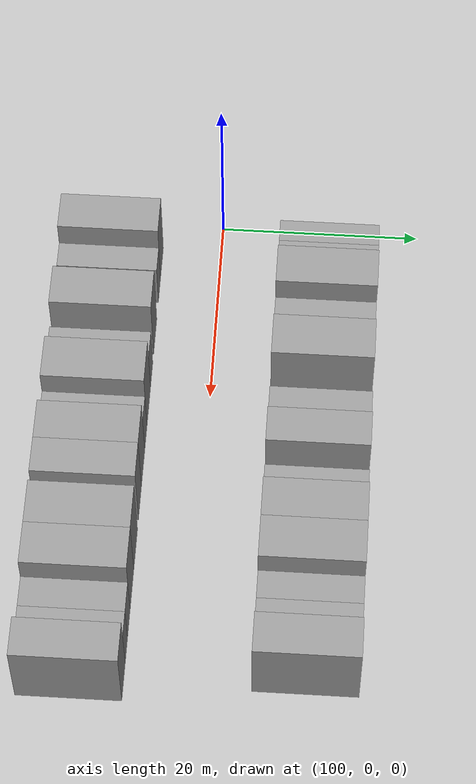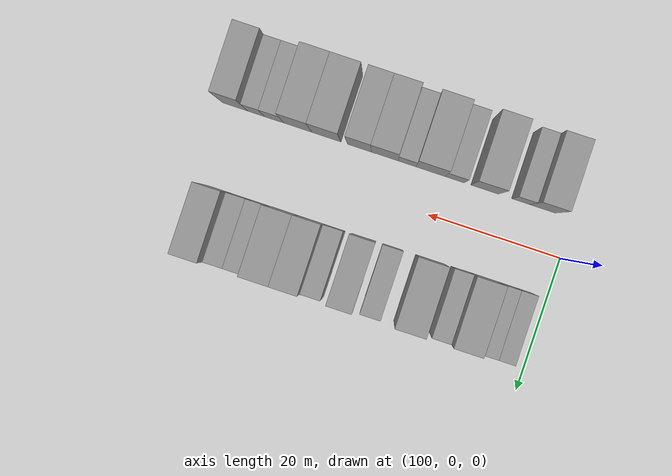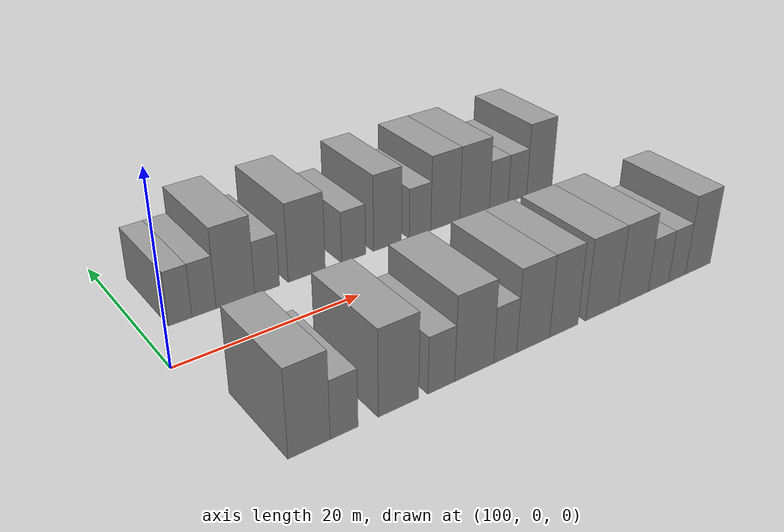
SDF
<sdf version="1.6">
 <world name="default">
  <model name="building_27">
   <static>1</static>
   <pose>103.7505 11.0000 0 0.000000 0.000000 1.570796</pose>
   <link name="link">
    <pose>0 0 3.00 0 0 0</pose>
    <collision name="collision"><geometry><box><size>10.0000 2.4264 6.0000</size></box></geometry></collision>
    <visual name="visual">
     <cast_shadows>0</cast_shadows>
     <geometry><box><size>10.0000 2.4264 6.0000</size></box></geometry>
     <material>
      <script>
       <uri>model://grey_wall/materials/scripts</uri>
       <uri>model://grey_wall/materials/textures</uri>
       <name>vrc/grey_wall</name>
      </script>
     </material>
    </visual>
   </link>
  </model>
  <model name="building_28">
   <static>1</static>
   <pose>106.2379 11.0000 0 0.000000 0.000000 1.570796</pose>
   <link name="link">
    <pose>0 0 3.00 0 0 0</pose>
    <collision name="collision"><geometry><box><size>10.0000 2.5483 6.0000</size></box></geometry></collision>
    <visual name="visual">
     <cast_shadows>0</cast_shadows>
     <geometry><box><size>10.0000 2.5483 6.0000</size></box></geometry>
     <material>
      <script>
       <uri>model://grey_wall/materials/scripts</uri>
       <uri>model://grey_wall/materials/textures</uri>
       <name>vrc/grey_wall</name>
      </script>
     </material>
    </visual>
   </link>
  </model>
  <model name="building_29">
   <static>1</static>
   <pose>109.6192 11.0000 0 0.000000 0.000000 1.570796</pose>
   <link name="link">
    <pose>0 0 4.50 0 0 0</pose>
    <collision name="collision"><geometry><box><size>10.0000 4.2144 9.0000</size></box></geometry></collision>
    <visual name="visual">
     <cast_shadows>0</cast_shadows>
     <geometry><box><size>10.0000 4.2144 9.0000</size></box></geometry>
     <material>
      <script>
       <uri>model://grey_wall/materials/scripts</uri>
       <uri>model://grey_wall/materials/textures</uri>
       <name>vrc/grey_wall</name>
      </script>
     </material>
    </visual>
   </link>
  </model>
  <model name="building_30">
   <static>1</static>
   <pose>113.1307 11.0000 0 0.000000 0.000000 1.570796</pose>
   <link name="link">
    <pose>0 0 3.00 0 0 0</pose>
    <collision name="collision"><geometry><box><size>10.0000 2.8086 6.0000</size></box></geometry></collision>
    <visual name="visual">
     <cast_shadows>0</cast_shadows>
     <geometry><box><size>10.0000 2.8086 6.0000</size></box></geometry>
     <material>
      <script>
       <uri>model://grey_wall/materials/scripts</uri>
       <uri>model://grey_wall/materials/textures</uri>
       <name>vrc/grey_wall</name>
      </script>
     </material>
    </visual>
   </link>
  </model>
  <model name="building_31">
   <static>1</static>
   <pose>117.7258 11.0000 0 0.000000 0.000000 1.570796</pose>
   <link name="link">
    <pose>0 0 4.50 0 0 0</pose>
    <collision name="collision"><geometry><box><size>10.0000 4.3816 9.0000</size></box></geometry></collision>
    <visual name="visual">
     <cast_shadows>0</cast_shadows>
     <geometry><box><size>10.0000 4.3816 9.0000</size></box></geometry>
     <material>
      <script>
       <uri>model://grey_wall/materials/scripts</uri>
       <uri>model://grey_wall/materials/textures</uri>
       <name>vrc/grey_wall</name>
      </script>
     </material>
    </visual>
   </link>
  </model>
  <model name="building_32">
   <static>1</static>
   <pose>123.4141 11.0000 0 0.000000 0.000000 1.570796</pose>
   <link name="link">
    <pose>0 0 3.00 0 0 0</pose>
    <collision name="collision"><geometry><box><size>10.0000 2.9950 6.0000</size></box></geometry></collision>
    <visual name="visual">
     <cast_shadows>0</cast_shadows>
     <geometry><box><size>10.0000 2.9950 6.0000</size></box></geometry>
     <material>
      <script>
       <uri>model://grey_wall/materials/scripts</uri>
       <uri>model://grey_wall/materials/textures</uri>
       <name>vrc/grey_wall</name>
      </script>
     </material>
    </visual>
   </link>
  </model>
  <model name="building_33">
   <static>1</static>
   <pose>127.7381 11.0000 0 0.000000 0.000000 1.570796</pose>
   <link name="link">
    <pose>0 0 4.50 0 0 0</pose>
    <collision name="collision"><geometry><box><size>10.0000 3.6529 9.0000</size></box></geometry></collision>
    <visual name="visual">
     <cast_shadows>0</cast_shadows>
     <geometry><box><size>10.0000 3.6529 9.0000</size></box></geometry>
     <material>
      <script>
       <uri>model://grey_wall/materials/scripts</uri>
       <uri>model://grey_wall/materials/textures</uri>
       <name>vrc/grey_wall</name>
      </script>
     </material>
    </visual>
   </link>
  </model>
  <model name="building_34">
   <static>1</static>
   <pose>132.0323 11.0000 0 0.000000 0.000000 1.570796</pose>
   <link name="link">
    <pose>0 0 3.00 0 0 0</pose>
    <collision name="collision"><geometry><box><size>10.0000 2.9356 6.0000</size></box></geometry></collision>
    <visual name="visual">
     <cast_shadows>0</cast_shadows>
     <geometry><box><size>10.0000 2.9356 6.0000</size></box></geometry>
     <material>
      <script>
       <uri>model://grey_wall/materials/scripts</uri>
       <uri>model://grey_wall/materials/textures</uri>
       <name>vrc/grey_wall</name>
      </script>
     </material>
    </visual>
   </link>
  </model>
  <model name="building_35">
   <static>1</static>
   <pose>135.5147 11.0000 0 0.000000 0.000000 1.570796</pose>
   <link name="link">
    <pose>0 0 4.50 0 0 0</pose>
    <collision name="collision"><geometry><box><size>10.0000 4.0293 9.0000</size></box></geometry></collision>
    <visual name="visual">
     <cast_shadows>0</cast_shadows>
     <geometry><box><size>10.0000 4.0293 9.0000</size></box></geometry>
     <material>
      <script>
       <uri>model://grey_wall/materials/scripts</uri>
       <uri>model://grey_wall/materials/textures</uri>
       <name>vrc/grey_wall</name>
      </script>
     </material>
    </visual>
   </link>
  </model>
  <model name="building_36">
   <static>1</static>
   <pose>139.6700 11.0000 0 0.000000 0.000000 1.570796</pose>
   <link name="link">
    <pose>0 0 4.50 0 0 0</pose>
    <collision name="collision"><geometry><box><size>10.0000 4.2813 9.0000</size></box></geometry></collision>
    <visual name="visual">
     <cast_shadows>0</cast_shadows>
     <geometry><box><size>10.0000 4.2813 9.0000</size></box></geometry>
     <material>
      <script>
       <uri>model://grey_wall/materials/scripts</uri>
       <uri>model://grey_wall/materials/textures</uri>
       <name>vrc/grey_wall</name>
      </script>
     </material>
    </visual>
   </link>
  </model>
  <model name="building_37">
   <static>1</static>
   <pose>143.2204 11.0000 0 0.000000 0.000000 1.570796</pose>
   <link name="link">
    <pose>0 0 3.00 0 0 0</pose>
    <collision name="collision"><geometry><box><size>10.0000 2.8195 6.0000</size></box></geometry></collision>
    <visual name="visual">
     <cast_shadows>0</cast_shadows>
     <geometry><box><size>10.0000 2.8195 6.0000</size></box></geometry>
     <material>
      <script>
       <uri>model://grey_wall/materials/scripts</uri>
       <uri>model://grey_wall/materials/textures</uri>
       <name>vrc/grey_wall</name>
      </script>
     </material>
    </visual>
   </link>
  </model>
  <model name="building_38">
   <static>1</static>
   <pose>146.0346 11.0000 0 0.000000 0.000000 1.570796</pose>
   <link name="link">
    <pose>0 0 3.00 0 0 0</pose>
    <collision name="collision"><geometry><box><size>10.0000 2.8088 6.0000</size></box></geometry></collision>
    <visual name="visual">
     <cast_shadows>0</cast_shadows>
     <geometry><box><size>10.0000 2.8088 6.0000</size></box></geometry>
     <material>
      <script>
       <uri>model://grey_wall/materials/scripts</uri>
       <uri>model://grey_wall/materials/textures</uri>
       <name>vrc/grey_wall</name>
      </script>
     </material>
    </visual>
   </link>
  </model>
  <model name="building_39">
   <static>1</static>
   <pose>149.4398 11.0000 0 0.000000 0.000000 1.570796</pose>
   <link name="link">
    <pose>0 0 4.50 0 0 0</pose>
    <collision name="collision"><geometry><box><size>10.0000 4.0015 9.0000</size></box></geometry></collision>
    <visual name="visual">
     <cast_shadows>0</cast_shadows>
     <geometry><box><size>10.0000 4.0015 9.0000</size></box></geometry>
     <material>
      <script>
       <uri>model://grey_wall/materials/scripts</uri>
       <uri>model://grey_wall/materials/textures</uri>
       <name>vrc/grey_wall</name>
      </script>
     </material>
    </visual>
   </link>
  </model>
  <model name="building_78">
   <static>1</static>
   <pose>104.6436 -11.0000 0 0.000000 0.000000 1.570796</pose>
   <link name="link">
    <pose>0 0 4.50 0 0 0</pose>
    <collision name="collision"><geometry><box><size>10.0000 3.9435 9.0000</size></box></geometry></collision>
    <visual name="visual">
     <cast_shadows>0</cast_shadows>
     <geometry><box><size>10.0000 3.9435 9.0000</size></box></geometry>
     <material>
      <script>
       <uri>model://grey_wall/materials/scripts</uri>
       <uri>model://grey_wall/materials/textures</uri>
       <name>vrc/grey_wall</name>
      </script>
     </material>
    </visual>
   </link>
  </model>
  <model name="building_79">
   <static>1</static>
   <pose>107.9692 -11.0000 0 0.000000 0.000000 1.570796</pose>
   <link name="link">
    <pose>0 0 3.00 0 0 0</pose>
    <collision name="collision"><geometry><box><size>10.0000 2.7077 6.0000</size></box></geometry></collision>
    <visual name="visual">
     <cast_shadows>0</cast_shadows>
     <geometry><box><size>10.0000 2.7077 6.0000</size></box></geometry>
     <material>
      <script>
       <uri>model://grey_wall/materials/scripts</uri>
       <uri>model://grey_wall/materials/textures</uri>
       <name>vrc/grey_wall</name>
      </script>
     </material>
    </visual>
   </link>
  </model>
  <model name="building_80">
   <static>1</static>
   <pose>113.4063 -11.0000 0 0.000000 0.000000 1.570796</pose>
   <link name="link">
    <pose>0 0 4.50 0 0 0</pose>
    <collision name="collision"><geometry><box><size>10.0000 4.1665 9.0000</size></box></geometry></collision>
    <visual name="visual">
     <cast_shadows>0</cast_shadows>
     <geometry><box><size>10.0000 4.1665 9.0000</size></box></geometry>
     <material>
      <script>
       <uri>model://grey_wall/materials/scripts</uri>
       <uri>model://grey_wall/materials/textures</uri>
       <name>vrc/grey_wall</name>
      </script>
     </material>
    </visual>
   </link>
  </model>
  <model name="building_81">
   <static>1</static>
   <pose>117.9511 -11.0000 0 0.000000 0.000000 1.570796</pose>
   <link name="link">
    <pose>0 0 3.00 0 0 0</pose>
    <collision name="collision"><geometry><box><size>10.0000 2.9232 6.0000</size></box></geometry></collision>
    <visual name="visual">
     <cast_shadows>0</cast_shadows>
     <geometry><box><size>10.0000 2.9232 6.0000</size></box></geometry>
     <material>
      <script>
       <uri>model://grey_wall/materials/scripts</uri>
       <uri>model://grey_wall/materials/textures</uri>
       <name>vrc/grey_wall</name>
      </script>
     </material>
    </visual>
   </link>
  </model>
  <model name="building_82">
   <static>1</static>
   <pose>121.6260 -11.0000 0 0.000000 0.000000 1.570796</pose>
   <link name="link">
    <pose>0 0 4.50 0 0 0</pose>
    <collision name="collision"><geometry><box><size>10.0000 4.4265 9.0000</size></box></geometry></collision>
    <visual name="visual">
     <cast_shadows>0</cast_shadows>
     <geometry><box><size>10.0000 4.4265 9.0000</size></box></geometry>
     <material>
      <script>
       <uri>model://grey_wall/materials/scripts</uri>
       <uri>model://grey_wall/materials/textures</uri>
       <name>vrc/grey_wall</name>
      </script>
     </material>
    </visual>
   </link>
  </model>
  <model name="building_83">
   <static>1</static>
   <pose>125.1942 -11.0000 0 0.000000 0.000000 1.570796</pose>
   <link name="link">
    <pose>0 0 3.00 0 0 0</pose>
    <collision name="collision"><geometry><box><size>10.0000 2.7098 6.0000</size></box></geometry></collision>
    <visual name="visual">
     <cast_shadows>0</cast_shadows>
     <geometry><box><size>10.0000 2.7098 6.0000</size></box></geometry>
     <material>
      <script>
       <uri>model://grey_wall/materials/scripts</uri>
       <uri>model://grey_wall/materials/textures</uri>
       <name>vrc/grey_wall</name>
      </script>
     </material>
    </visual>
   </link>
  </model>
  <model name="building_84">
   <static>1</static>
   <pose>128.5670 -11.0000 0 0.000000 0.000000 1.570796</pose>
   <link name="link">
    <pose>0 0 4.50 0 0 0</pose>
    <collision name="collision"><geometry><box><size>10.0000 4.0359 9.0000</size></box></geometry></collision>
    <visual name="visual">
     <cast_shadows>0</cast_shadows>
     <geometry><box><size>10.0000 4.0359 9.0000</size></box></geometry>
     <material>
      <script>
       <uri>model://grey_wall/materials/scripts</uri>
       <uri>model://grey_wall/materials/textures</uri>
       <name>vrc/grey_wall</name>
      </script>
     </material>
    </visual>
   </link>
  </model>
  <model name="building_85">
   <static>1</static>
   <pose>132.3955 -11.0000 0 0.000000 0.000000 1.570796</pose>
   <link name="link">
    <pose>0 0 4.50 0 0 0</pose>
    <collision name="collision"><geometry><box><size>10.0000 3.6212 9.0000</size></box></geometry></collision>
    <visual name="visual">
     <cast_shadows>0</cast_shadows>
     <geometry><box><size>10.0000 3.6212 9.0000</size></box></geometry>
     <material>
      <script>
       <uri>model://grey_wall/materials/scripts</uri>
       <uri>model://grey_wall/materials/textures</uri>
       <name>vrc/grey_wall</name>
      </script>
     </material>
    </visual>
   </link>
  </model>
  <model name="building_86">
   <static>1</static>
   <pose>137.3933 -11.0000 0 0.000000 0.000000 1.570796</pose>
   <link name="link">
    <pose>0 0 4.50 0 0 0</pose>
    <collision name="collision"><geometry><box><size>10.0000 4.3745 9.0000</size></box></geometry></collision>
    <visual name="visual">
     <cast_shadows>0</cast_shadows>
     <geometry><box><size>10.0000 4.3745 9.0000</size></box></geometry>
     <material>
      <script>
       <uri>model://grey_wall/materials/scripts</uri>
       <uri>model://grey_wall/materials/textures</uri>
       <name>vrc/grey_wall</name>
      </script>
     </material>
    </visual>
   </link>
  </model>
  <model name="building_87">
   <static>1</static>
   <pose>141.6869 -11.0000 0 0.000000 0.000000 1.570796</pose>
   <link name="link">
    <pose>0 0 4.50 0 0 0</pose>
    <collision name="collision"><geometry><box><size>10.0000 4.2127 9.0000</size></box></geometry></collision>
    <visual name="visual">
     <cast_shadows>0</cast_shadows>
     <geometry><box><size>10.0000 4.2127 9.0000</size></box></geometry>
     <material>
      <script>
       <uri>model://grey_wall/materials/scripts</uri>
       <uri>model://grey_wall/materials/textures</uri>
       <name>vrc/grey_wall</name>
      </script>
     </material>
    </visual>
   </link>
  </model>
  <model name="building_88">
   <static>1</static>
   <pose>145.2846 -11.0000 0 0.000000 0.000000 1.570796</pose>
   <link name="link">
    <pose>0 0 3.00 0 0 0</pose>
    <collision name="collision"><geometry><box><size>10.0000 2.9827 6.0000</size></box></geometry></collision>
    <visual name="visual">
     <cast_shadows>0</cast_shadows>
     <geometry><box><size>10.0000 2.9827 6.0000</size></box></geometry>
     <material>
      <script>
       <uri>model://grey_wall/materials/scripts</uri>
       <uri>model://grey_wall/materials/textures</uri>
       <name>vrc/grey_wall</name>
      </script>
     </material>
    </visual>
   </link>
  </model>
  <model name="building_89">
   <static>1</static>
   <pose>148.0448 -11.0000 0 0.000000 0.000000 1.570796</pose>
   <link name="link">
    <pose>0 0 3.00 0 0 0</pose>
    <collision name="collision"><geometry><box><size>10.0000 2.5377 6.0000</size></box></geometry></collision>
    <visual name="visual">
     <cast_shadows>0</cast_shadows>
     <geometry><box><size>10.0000 2.5377 6.0000</size></box></geometry>
     <material>
      <script>
       <uri>model://grey_wall/materials/scripts</uri>
       <uri>model://grey_wall/materials/textures</uri>
       <name>vrc/grey_wall</name>
      </script>
     </material>
    </visual>
   </link>
  </model>
  <model name="building_90">
   <static>1</static>
   <pose>151.2189 -11.0000 0 0.000000 0.000000 1.570796</pose>
   <link name="link">
    <pose>0 0 4.50 0 0 0</pose>
    <collision name="collision"><geometry><box><size>10.0000 3.8105 9.0000</size></box></geometry></collision>
    <visual name="visual">
     <cast_shadows>0</cast_shadows>
     <geometry><box><size>10.0000 3.8105 9.0000</size></box></geometry>
     <material>
      <script>
       <uri>model://grey_wall/materials/scripts</uri>
       <uri>model://grey_wall/materials/textures</uri>
       <name>vrc/grey_wall</name>
      </script>
     </material>
    </visual>
   </link>
  </model>
 </world>
</sdf>
